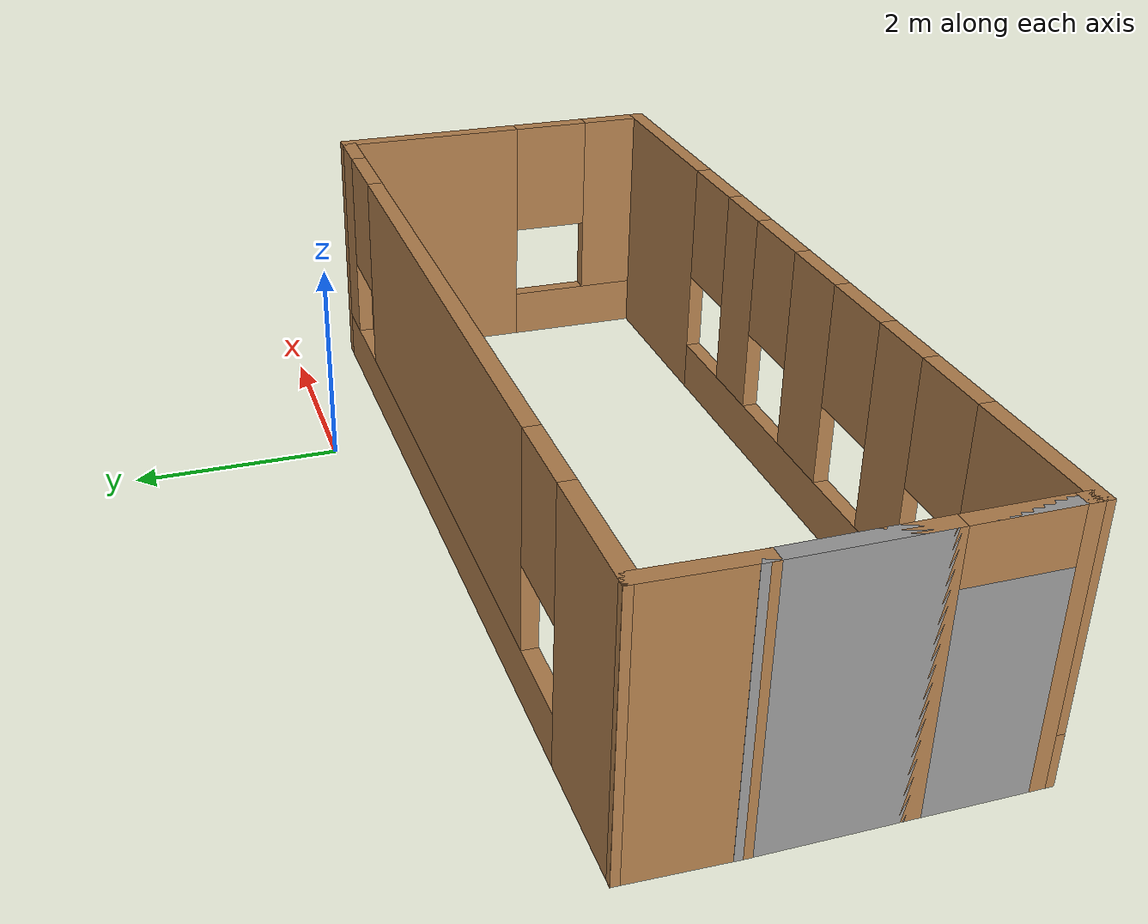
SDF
<?xml version='1.0'?>
<sdf version='1.6'>
  <model name='Custom_World'>
    <pose frame=''>-2.06081 -2.39449 0 0 -0 0</pose>
    <link name='Wall_1'>
      <pose frame=''>0.010815 1.67449 0 0 -0 0</pose>
      <visual name='Wall_1_Visual_0'>
        <pose frame=''>-3.7375 0 1.25 0 -0 0</pose>
        <geometry>
          <box>
            <size>1.275 0.15 2.5</size>
          </box>
        </geometry>
        <material>
          <script>
            <uri>file://media/materials/scripts/gazebo.material</uri>
            <name>Gazebo/Wood</name>
          </script>
          <ambient>1 1 1 1</ambient>
        </material>
        <meta>
          <layer>0</layer>
        </meta>
      </visual>
      <collision name='Wall_1_Collision_0'>
        <geometry>
          <box>
            <size>1.275 0.15 2.5</size>
          </box>
        </geometry>
        <pose frame=''>-3.7375 0 1.25 0 -0 0</pose>
      </collision>
      <visual name='Wall_1_Visual_1'>
        <pose frame=''>0.6375 0 0.25 0 -0 0</pose>
        <geometry>
          <box>
            <size>7.475 0.15 0.5</size>
          </box>
        </geometry>
        <material>
          <script>
            <uri>file://media/materials/scripts/gazebo.material</uri>
            <name>Gazebo/Wood</name>
          </script>
          <ambient>1 1 1 1</ambient>
        </material>
        <meta>
          <layer>0</layer>
        </meta>
      </visual>
      <collision name='Wall_1_Collision_1'>
        <geometry>
          <box>
            <size>7.475 0.15 0.5</size>
          </box>
        </geometry>
        <pose frame=''>0.6375 0 0.25 0 -0 0</pose>
      </collision>
      <visual name='Wall_1_Visual_2'>
        <pose frame=''>0.34 0 1.5 0 -0 0</pose>
        <geometry>
          <box>
            <size>5.28 0.15 2</size>
          </box>
        </geometry>
        <material>
          <script>
            <uri>file://media/materials/scripts/gazebo.material</uri>
            <name>Gazebo/Wood</name>
          </script>
          <ambient>1 1 1 1</ambient>
        </material>
        <meta>
          <layer>0</layer>
        </meta>
      </visual>
      <collision name='Wall_1_Collision_2'>
        <geometry>
          <box>
            <size>5.28 0.15 2</size>
          </box>
        </geometry>
        <pose frame=''>0.34 0 1.5 0 -0 0</pose>
      </collision>
      <visual name='Wall_1_Visual_3'>
        <pose frame=''>4.0775 0 1.5 0 -0 0</pose>
        <geometry>
          <box>
            <size>0.595 0.15 2</size>
          </box>
        </geometry>
        <material>
          <script>
            <uri>file://media/materials/scripts/gazebo.material</uri>
            <name>Gazebo/Wood</name>
          </script>
          <ambient>1 1 1 1</ambient>
        </material>
        <meta>
          <layer>0</layer>
        </meta>
      </visual>
      <collision name='Wall_1_Collision_3'>
        <geometry>
          <box>
            <size>0.595 0.15 2</size>
          </box>
        </geometry>
        <pose frame=''>4.0775 0 1.5 0 -0 0</pose>
      </collision>
      <visual name='Wall_1_Visual_4'>
        <pose frame=''>-2.7 0 1.9 0 -0 0</pose>
        <geometry>
          <box>
            <size>0.8 0.15 1.2</size>
          </box>
        </geometry>
        <material>
          <script>
            <uri>file://media/materials/scripts/gazebo.material</uri>
            <name>Gazebo/Wood</name>
          </script>
          <ambient>1 1 1 1</ambient>
        </material>
        <meta>
          <layer>0</layer>
        </meta>
      </visual>
      <collision name='Wall_1_Collision_4'>
        <geometry>
          <box>
            <size>0.8 0.15 1.2</size>
          </box>
        </geometry>
        <pose frame=''>-2.7 0 1.9 0 -0 0</pose>
      </collision>
      <visual name='Wall_1_Visual_5'>
        <pose frame=''>3.38 0 1.9 0 -0 0</pose>
        <geometry>
          <box>
            <size>0.8 0.15 1.2</size>
          </box>
        </geometry>
        <material>
          <script>
            <uri>file://media/materials/scripts/gazebo.material</uri>
            <name>Gazebo/Wood</name>
          </script>
          <ambient>1 1 1 1</ambient>
        </material>
        <meta>
          <layer>0</layer>
        </meta>
      </visual>
      <collision name='Wall_1_Collision_5'>
        <geometry>
          <box>
            <size>0.8 0.15 1.2</size>
          </box>
        </geometry>
        <pose frame=''>3.38 0 1.9 0 -0 0</pose>
      </collision>
    </link>
    <link name='Wall_2'>
      <pose frame=''>4.31081 -0.000509 0 0 -0 -1.5708</pose>
      <visual name='Wall_2_Visual_0'>
        <pose frame=''>-0.7675 0 1.25 0 -0 0</pose>
        <geometry>
          <box>
            <size>1.965 0.15 2.5</size>
          </box>
        </geometry>
        <material>
          <script>
            <uri>file://media/materials/scripts/gazebo.material</uri>
            <name>Gazebo/Wood</name>
          </script>
          <ambient>1 1 1 1</ambient>
        </material>
        <meta>
          <layer>0</layer>
        </meta>
      </visual>
      <collision name='Wall_2_Collision_0'>
        <geometry>
          <box>
            <size>1.965 0.15 2.5</size>
          </box>
        </geometry>
        <pose frame=''>-0.7675 0 1.25 0 -0 0</pose>
      </collision>
      <visual name='Wall_2_Visual_1'>
        <pose frame=''>0.9825 0 0.25 0 -0 0</pose>
        <geometry>
          <box>
            <size>1.535 0.15 0.5</size>
          </box>
        </geometry>
        <material>
          <script>
            <uri>file://media/materials/scripts/gazebo.material</uri>
            <name>Gazebo/Wood</name>
          </script>
          <ambient>1 1 1 1</ambient>
        </material>
        <meta>
          <layer>0</layer>
        </meta>
      </visual>
      <collision name='Wall_2_Collision_1'>
        <geometry>
          <box>
            <size>1.535 0.15 0.5</size>
          </box>
        </geometry>
        <pose frame=''>0.9825 0 0.25 0 -0 0</pose>
      </collision>
      <visual name='Wall_2_Visual_2'>
        <pose frame=''>1.3825 0 1.5 0 -0 0</pose>
        <geometry>
          <box>
            <size>0.735 0.15 2</size>
          </box>
        </geometry>
        <material>
          <script>
            <uri>file://media/materials/scripts/gazebo.material</uri>
            <name>Gazebo/Wood</name>
          </script>
          <ambient>1 1 1 1</ambient>
        </material>
        <meta>
          <layer>0</layer>
        </meta>
      </visual>
      <collision name='Wall_2_Collision_2'>
        <geometry>
          <box>
            <size>0.735 0.15 2</size>
          </box>
        </geometry>
        <pose frame=''>1.3825 0 1.5 0 -0 0</pose>
      </collision>
      <visual name='Wall_2_Visual_3'>
        <pose frame=''>0.615 0 1.9 0 -0 0</pose>
        <geometry>
          <box>
            <size>0.8 0.15 1.2</size>
          </box>
        </geometry>
        <material>
          <script>
            <uri>file://media/materials/scripts/gazebo.material</uri>
            <name>Gazebo/Wood</name>
          </script>
          <ambient>1 1 1 1</ambient>
        </material>
        <meta>
          <layer>0</layer>
        </meta>
      </visual>
      <collision name='Wall_2_Collision_3'>
        <geometry>
          <box>
            <size>0.8 0.15 1.2</size>
          </box>
        </geometry>
        <pose frame=''>0.615 0 1.9 0 -0 0</pose>
      </collision>
    </link>
    <link name='Wall_3'>
      <pose frame=''>0.010815 -1.67551 0 0 -0 3.14159</pose>
      <visual name='Wall_3_Visual_0'>
        <pose frame=''>-3.3825 0 1.25 0 -0 0</pose>
        <geometry>
          <box>
            <size>1.985 0.15 2.5</size>
          </box>
        </geometry>
        <material>
          <script>
            <uri>file://media/materials/scripts/gazebo.material</uri>
            <name>Gazebo/Wood</name>
          </script>
          <ambient>1 1 1 1</ambient>
        </material>
        <meta>
          <layer>0</layer>
        </meta>
      </visual>
      <collision name='Wall_3_Collision_0'>
        <geometry>
          <box>
            <size>1.985 0.15 2.5</size>
          </box>
        </geometry>
        <pose frame=''>-3.3825 0 1.25 0 -0 0</pose>
      </collision>
      <visual name='Wall_3_Visual_1'>
        <pose frame=''>0.9925 0 0.25 0 -0 0</pose>
        <geometry>
          <box>
            <size>6.765 0.15 0.5</size>
          </box>
        </geometry>
        <material>
          <script>
            <uri>file://media/materials/scripts/gazebo.material</uri>
            <name>Gazebo/Wood</name>
          </script>
          <ambient>1 1 1 1</ambient>
        </material>
        <meta>
          <layer>0</layer>
        </meta>
      </visual>
      <collision name='Wall_3_Collision_1'>
        <geometry>
          <box>
            <size>6.765 0.15 0.5</size>
          </box>
        </geometry>
        <pose frame=''>0.9925 0 0.25 0 -0 0</pose>
      </collision>
      <visual name='Wall_3_Visual_2'>
        <pose frame=''>-1.255 0 1.5 0 -0 0</pose>
        <geometry>
          <box>
            <size>0.67 0.15 2</size>
          </box>
        </geometry>
        <material>
          <script>
            <uri>file://media/materials/scripts/gazebo.material</uri>
            <name>Gazebo/Wood</name>
          </script>
          <ambient>1 1 1 1</ambient>
        </material>
        <meta>
          <layer>0</layer>
        </meta>
      </visual>
      <collision name='Wall_3_Collision_2'>
        <geometry>
          <box>
            <size>0.67 0.15 2</size>
          </box>
        </geometry>
        <pose frame=''>-1.255 0 1.5 0 -0 0</pose>
      </collision>
      <visual name='Wall_3_Visual_3'>
        <pose frame=''>0.265 0 1.5 0 -0 0</pose>
        <geometry>
          <box>
            <size>0.77 0.15 2</size>
          </box>
        </geometry>
        <material>
          <script>
            <uri>file://media/materials/scripts/gazebo.material</uri>
            <name>Gazebo/Wood</name>
          </script>
          <ambient>1 1 1 1</ambient>
        </material>
        <meta>
          <layer>0</layer>
        </meta>
      </visual>
      <collision name='Wall_3_Collision_3'>
        <geometry>
          <box>
            <size>0.77 0.15 2</size>
          </box>
        </geometry>
        <pose frame=''>0.265 0 1.5 0 -0 0</pose>
      </collision>
      <visual name='Wall_3_Visual_4'>
        <pose frame=''>1.79 0 1.5 0 -0 0</pose>
        <geometry>
          <box>
            <size>0.68 0.15 2</size>
          </box>
        </geometry>
        <material>
          <script>
            <uri>file://media/materials/scripts/gazebo.material</uri>
            <name>Gazebo/Wood</name>
          </script>
          <ambient>1 1 1 1</ambient>
        </material>
        <meta>
          <layer>0</layer>
        </meta>
      </visual>
      <collision name='Wall_3_Collision_4'>
        <geometry>
          <box>
            <size>0.68 0.15 2</size>
          </box>
        </geometry>
        <pose frame=''>1.79 0 1.5 0 -0 0</pose>
      </collision>
      <visual name='Wall_3_Visual_5'>
        <pose frame=''>3.6525 0 1.5 0 -0 0</pose>
        <geometry>
          <box>
            <size>1.445 0.15 2</size>
          </box>
        </geometry>
        <material>
          <script>
            <uri>file://media/materials/scripts/gazebo.material</uri>
            <name>Gazebo/Wood</name>
          </script>
          <ambient>1 1 1 1</ambient>
        </material>
        <meta>
          <layer>0</layer>
        </meta>
      </visual>
      <collision name='Wall_3_Collision_5'>
        <geometry>
          <box>
            <size>1.445 0.15 2</size>
          </box>
        </geometry>
        <pose frame=''>3.6525 0 1.5 0 -0 0</pose>
      </collision>
      <visual name='Wall_3_Visual_6'>
        <pose frame=''>-1.99 0 1.9 0 -0 0</pose>
        <geometry>
          <box>
            <size>0.8 0.15 1.2</size>
          </box>
        </geometry>
        <material>
          <script>
            <uri>file://media/materials/scripts/gazebo.material</uri>
            <name>Gazebo/Wood</name>
          </script>
          <ambient>1 1 1 1</ambient>
        </material>
        <meta>
          <layer>0</layer>
        </meta>
      </visual>
      <collision name='Wall_3_Collision_6'>
        <geometry>
          <box>
            <size>0.8 0.15 1.2</size>
          </box>
        </geometry>
        <pose frame=''>-1.99 0 1.9 0 -0 0</pose>
      </collision>
      <visual name='Wall_3_Visual_7'>
        <pose frame=''>-0.52 0 1.9 0 -0 0</pose>
        <geometry>
          <box>
            <size>0.8 0.15 1.2</size>
          </box>
        </geometry>
        <material>
          <script>
            <uri>file://media/materials/scripts/gazebo.material</uri>
            <name>Gazebo/Wood</name>
          </script>
          <ambient>1 1 1 1</ambient>
        </material>
        <meta>
          <layer>0</layer>
        </meta>
      </visual>
      <collision name='Wall_3_Collision_7'>
        <geometry>
          <box>
            <size>0.8 0.15 1.2</size>
          </box>
        </geometry>
        <pose frame=''>-0.52 0 1.9 0 -0 0</pose>
      </collision>
      <visual name='Wall_3_Visual_8'>
        <pose frame=''>1.05 0 1.9 0 -0 0</pose>
        <geometry>
          <box>
            <size>0.8 0.15 1.2</size>
          </box>
        </geometry>
        <material>
          <script>
            <uri>file://media/materials/scripts/gazebo.material</uri>
            <name>Gazebo/Wood</name>
          </script>
          <ambient>1 1 1 1</ambient>
        </material>
        <meta>
          <layer>0</layer>
        </meta>
      </visual>
      <collision name='Wall_3_Collision_8'>
        <geometry>
          <box>
            <size>0.8 0.15 1.2</size>
          </box>
        </geometry>
        <pose frame=''>1.05 0 1.9 0 -0 0</pose>
      </collision>
      <visual name='Wall_3_Visual_9'>
        <pose frame=''>2.53 0 1.9 0 -0 0</pose>
        <geometry>
          <box>
            <size>0.8 0.15 1.2</size>
          </box>
        </geometry>
        <material>
          <script>
            <uri>file://media/materials/scripts/gazebo.material</uri>
            <name>Gazebo/Wood</name>
          </script>
          <ambient>1 1 1 1</ambient>
        </material>
        <meta>
          <layer>0</layer>
        </meta>
      </visual>
      <collision name='Wall_3_Collision_9'>
        <geometry>
          <box>
            <size>0.8 0.15 1.2</size>
          </box>
        </geometry>
        <pose frame=''>2.53 0 1.9 0 -0 0</pose>
      </collision>
    </link>
    <link name='Wall_6'>
      <collision name='Wall_6_Collision'>
        <geometry>
          <box>
            <size>2.59008 0.15 2.5</size>
          </box>
        </geometry>
        <pose frame=''>0 0 1.25 0 -0 0</pose>
      </collision>
      <visual name='Wall_6_Visual'>
        <pose frame=''>0 0 1.25 0 -0 0</pose>
        <geometry>
          <box>
            <size>2.59008 0.15 2.5</size>
          </box>
        </geometry>
        <material>
          <script>
            <uri>file://media/materials/scripts/gazebo.material</uri>
            <name>Gazebo/Grey</name>
          </script>
          <ambient>1 1 1 1</ambient>
        </material>
        <meta>
          <layer>0</layer>
        </meta>
      </visual>
      <pose frame=''>-4.29918 -0.455509 0 0 -0 -1.5626</pose>
    </link>
    <link name='Wall_7'>
      <pose frame=''>-4.29918 -0.455509 0 0 -0 1.57899</pose>
      <visual name='Wall_7_Visual_0'>
        <pose frame=''>-1.18772 0 1.25 0 -0 0</pose>
        <geometry>
          <box>
            <size>0.214652 0.15 2.5</size>
          </box>
        </geometry>
        <material>
          <script>
            <uri>file://media/materials/scripts/gazebo.material</uri>
            <name>Gazebo/Wood</name>
          </script>
          <ambient>1 1 1 1</ambient>
        </material>
        <meta>
          <layer>0</layer>
        </meta>
      </visual>
      <collision name='Wall_7_Collision_0'>
        <geometry>
          <box>
            <size>0.214652 0.15 2.5</size>
          </box>
        </geometry>
        <pose frame=''>-1.18772 0 1.25 0 -0 0</pose>
      </collision>
      <visual name='Wall_7_Visual_1'>
        <pose frame=''>0.557326 0 1.25 0 -0 0</pose>
        <geometry>
          <box>
            <size>1.47543 0.15 2.5</size>
          </box>
        </geometry>
        <material>
          <script>
            <uri>file://media/materials/scripts/gazebo.material</uri>
            <name>Gazebo/Wood</name>
          </script>
          <ambient>1 1 1 1</ambient>
        </material>
        <meta>
          <layer>0</layer>
        </meta>
      </visual>
      <collision name='Wall_7_Collision_1'>
        <geometry>
          <box>
            <size>1.47543 0.15 2.5</size>
          </box>
        </geometry>
        <pose frame=''>0.557326 0 1.25 0 -0 0</pose>
      </collision>
      <visual name='Wall_7_Visual_2'>
        <pose frame=''>-0.630389 0 2.25 0 -0 0</pose>
        <geometry>
          <box>
            <size>0.9 0.15 0.5</size>
          </box>
        </geometry>
        <material>
          <script>
            <uri>file://media/materials/scripts/gazebo.material</uri>
            <name>Gazebo/Wood</name>
          </script>
          <ambient>1 1 1 1</ambient>
        </material>
        <meta>
          <layer>0</layer>
        </meta>
      </visual>
      <collision name='Wall_7_Collision_2'>
        <geometry>
          <box>
            <size>0.9 0.15 0.5</size>
          </box>
        </geometry>
        <pose frame=''>-0.630389 0 2.25 0 -0 0</pose>
      </collision>
    </link>
    <link name='Wall_8'>
      <collision name='Wall_8_Collision'>
        <geometry>
          <box>
            <size>1.06022 0.15 2.5</size>
          </box>
        </geometry>
        <pose frame=''>0 0 1.25 0 -0 0</pose>
      </collision>
      <visual name='Wall_8_Visual'>
        <pose frame=''>0 0 1.25 0 -0 0</pose>
        <geometry>
          <box>
            <size>1.06022 0.15 2.5</size>
          </box>
        </geometry>
        <material>
          <script>
            <uri>file://media/materials/scripts/gazebo.material</uri>
            <name>Gazebo/Wood</name>
          </script>
          <ambient>1 1 1 1</ambient>
        </material>
        <meta>
          <layer>0</layer>
        </meta>
      </visual>
      <pose frame=''>-4.29918 1.21949 0 0 -0 1.54882</pose>
    </link>
    <static>1</static>
  </model>
</sdf>
